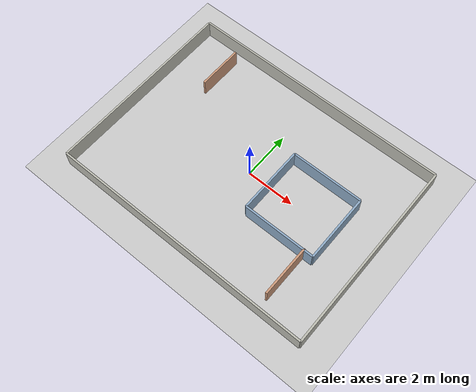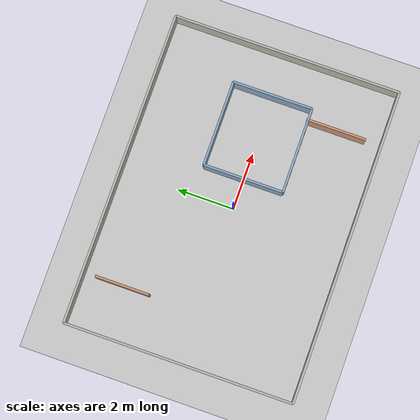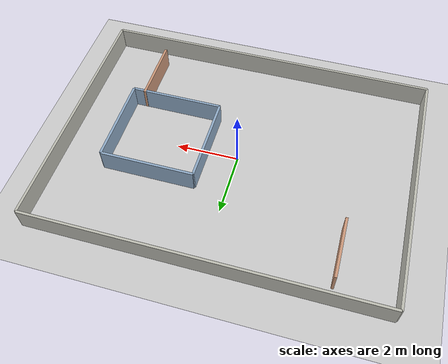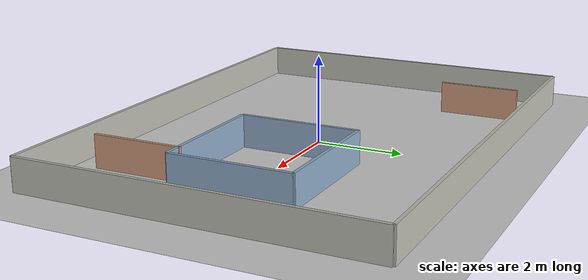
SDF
<?xml version="1.0" ?>
<sdf version="1.6">
  <world name="default">
    <gui>
      <camera name="user_camera">
        <pose>0 -10 12 0 0.95 1.5708</pose>
      </camera>
    </gui>

    <scene>
      <ambient>0.65 0.65 0.65 1</ambient>
      <background>0.55 0.58 0.62 1</background>
      <shadows>1</shadows>
      <grid>0</grid>
      <origin_visual>0</origin_visual>
    </scene>

    <include>
      <uri>model://ground_plane</uri>
    </include>

    <include>
      <uri>model://sun</uri>
    </include>

    <!-- Scaled for TurtleBot-class robots: 0.08 m wall thickness, 0.75 m height, >= 1.1 m lanes. -->
    <model name="slam_loop_walls">
      <static>true</static>

      <link name="north_wall">
        <pose>0 4 0.375 0 0 0</pose>
        <collision name="collision"><geometry><box><size>11 0.08 0.75</size></box></geometry></collision>
        <visual name="visual"><geometry><box><size>11 0.08 0.75</size></box></geometry><material><ambient>0.74 0.74 0.70 1</ambient><diffuse>0.74 0.74 0.70 1</diffuse></material></visual>
      </link>
      <link name="south_wall">
        <pose>0 -4 0.375 0 0 0</pose>
        <collision name="collision"><geometry><box><size>11 0.08 0.75</size></box></geometry></collision>
        <visual name="visual"><geometry><box><size>11 0.08 0.75</size></box></geometry><material><ambient>0.74 0.74 0.70 1</ambient><diffuse>0.74 0.74 0.70 1</diffuse></material></visual>
      </link>
      <link name="east_wall">
        <pose>5.5 0 0.375 0 0 1.5708</pose>
        <collision name="collision"><geometry><box><size>8 0.08 0.75</size></box></geometry></collision>
        <visual name="visual"><geometry><box><size>8 0.08 0.75</size></box></geometry><material><ambient>0.74 0.74 0.70 1</ambient><diffuse>0.74 0.74 0.70 1</diffuse></material></visual>
      </link>
      <link name="west_wall">
        <pose>-5.5 0 0.375 0 0 1.5708</pose>
        <collision name="collision"><geometry><box><size>8 0.08 0.75</size></box></geometry></collision>
        <visual name="visual"><geometry><box><size>8 0.08 0.75</size></box></geometry><material><ambient>0.74 0.74 0.70 1</ambient><diffuse>0.74 0.74 0.70 1</diffuse></material></visual>
      </link>

      <link name="center_island_north">
        <pose>2.5 1.4 0.375 0 0 0</pose>
        <collision name="collision"><geometry><box><size>3.0 0.08 0.75</size></box></geometry></collision>
        <visual name="visual"><geometry><box><size>3.0 0.08 0.75</size></box></geometry><material><ambient>0.56 0.67 0.78 1</ambient><diffuse>0.56 0.67 0.78 1</diffuse></material></visual>
      </link>
      <link name="center_island_south">
        <pose>2.5 -1.4 0.375 0 0 0</pose>
        <collision name="collision"><geometry><box><size>3.0 0.08 0.75</size></box></geometry></collision>
        <visual name="visual"><geometry><box><size>3.0 0.08 0.75</size></box></geometry><material><ambient>0.56 0.67 0.78 1</ambient><diffuse>0.56 0.67 0.78 1</diffuse></material></visual>
      </link>
      <link name="center_island_east">
        <pose>4.0 0 0.375 0 0 1.5708</pose>
        <collision name="collision"><geometry><box><size>2.8 0.08 0.75</size></box></geometry></collision>
        <visual name="visual"><geometry><box><size>2.8 0.08 0.75</size></box></geometry><material><ambient>0.56 0.67 0.78 1</ambient><diffuse>0.56 0.67 0.78 1</diffuse></material></visual>
      </link>
      <link name="center_island_west">
        <pose>1.0 0 0.375 0 0 1.5708</pose>
        <collision name="collision"><geometry><box><size>2.8 0.08 0.75</size></box></geometry></collision>
        <visual name="visual"><geometry><box><size>2.8 0.08 0.75</size></box></geometry><material><ambient>0.56 0.67 0.78 1</ambient><diffuse>0.56 0.67 0.78 1</diffuse></material></visual>
      </link>

      <link name="offset_wall_a">
        <pose>-3.7 2.6 0.375 0 0 1.5708</pose>
        <collision name="collision"><geometry><box><size>1.9 0.08 0.75</size></box></geometry></collision>
        <visual name="visual"><geometry><box><size>1.9 0.08 0.75</size></box></geometry><material><ambient>0.80 0.60 0.48 1</ambient><diffuse>0.80 0.60 0.48 1</diffuse></material></visual>
      </link>
      <link name="offset_wall_b">
        <pose>3.6 -2.4 0.375 0 0 1.5708</pose>
        <collision name="collision"><geometry><box><size>2.1 0.08 0.75</size></box></geometry></collision>
        <visual name="visual"><geometry><box><size>2.1 0.08 0.75</size></box></geometry><material><ambient>0.80 0.60 0.48 1</ambient><diffuse>0.80 0.60 0.48 1</diffuse></material></visual>
      </link>
    </model>
  </world>
</sdf>
